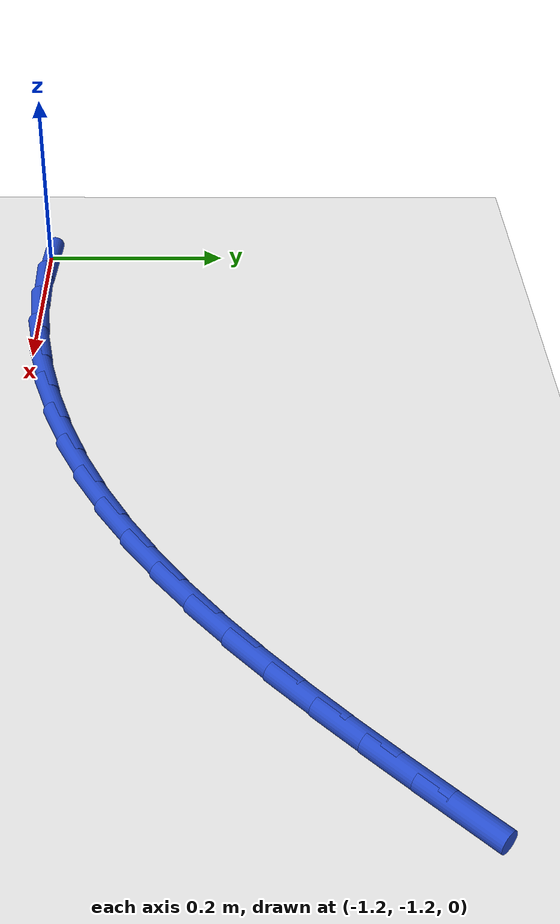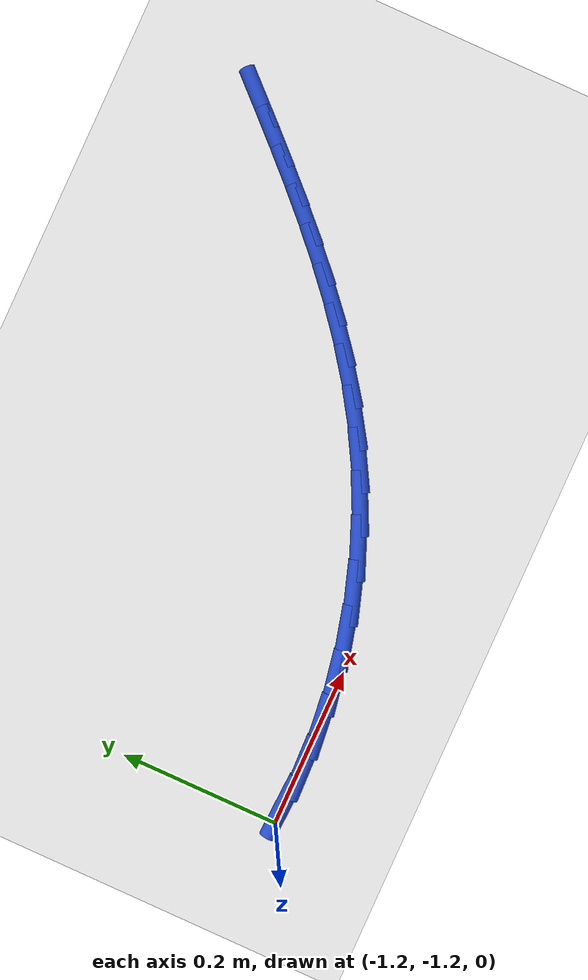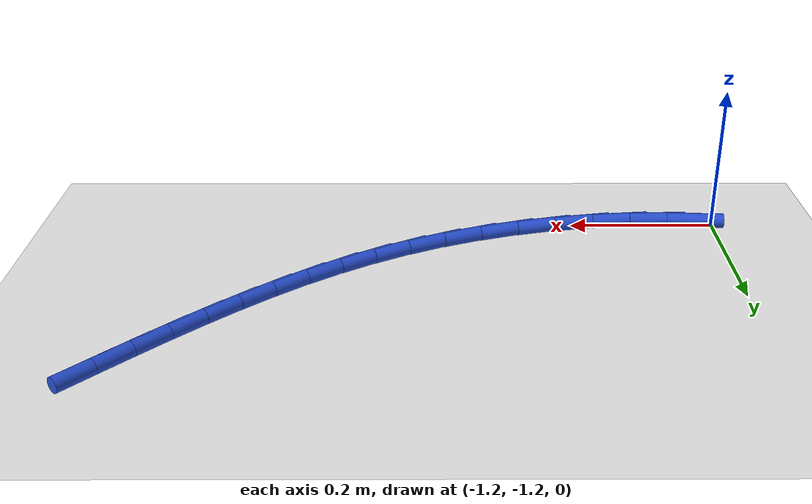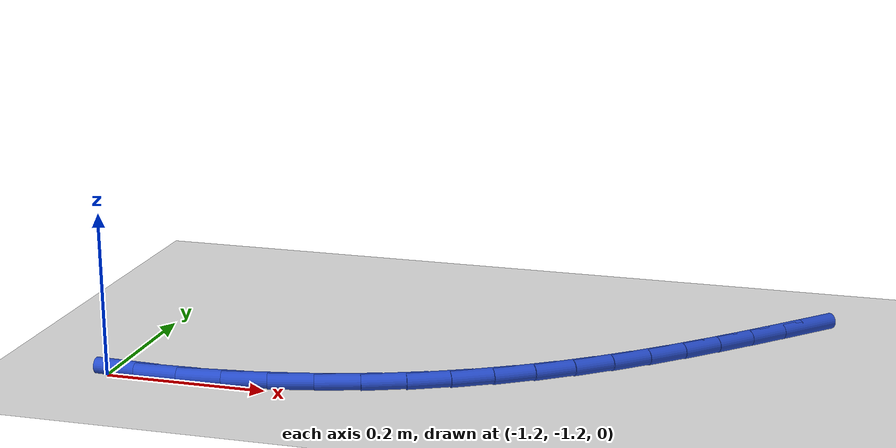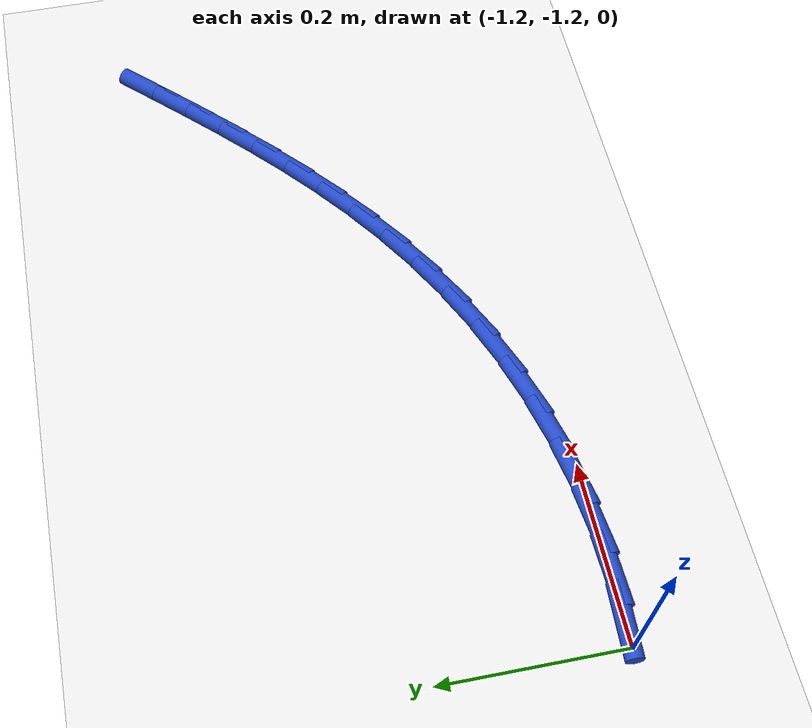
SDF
<sdf version="1.6">
 <world name="default">
  <model name="ground_plane">
   <static>1</static>
   <link name="link">
    <collision name="collision">
     <geometry><plane><normal>0 0 1</normal><size>100 100</size></plane></geometry>
     <surface><friction><ode><mu>100</mu><mu2>50</mu2></ode></friction></surface>
    </collision>
    <visual name="visual">
     <cast_shadows>0</cast_shadows>
     <geometry><plane><normal>0 0 1</normal><size>100 100</size></plane></geometry>
     <material>
      <script><uri>file://media/materials/scripts/gazebo.material</uri><name>Gazebo/WhiteGlow</name></script>
     </material>
    </visual>
   </link>
  </model>
  <model name="line">
   <link name="link_104">
    <pose>-1.1750400332294564 -1.1976938174834957 0.01 0 1.57 -0.05177354685977897</pose>
    <collision name="collision">
     <geometry><cylinder><radius>0.01</radius><length>0.08</length></cylinder></geometry>
    </collision>
    <visual name="visual">
     <material>
      <script><name>Gazebo/Blue</name><uri>file://media/materials/scripts/gazebo.material</uri></script>
     </material>
     <geometry><cylinder><radius>0.01</radius><length>0.08</length></cylinder></geometry>
    </visual>
   </link>
   <link name="link_105">
    <pose>-1.122023170419691 -1.2004411436894153 0.01 0 1.57 0.032870290658362264</pose>
    <collision name="collision">
     <geometry><cylinder><radius>0.01</radius><length>0.08</length></cylinder></geometry>
    </collision>
    <visual name="visual">
     <material>
      <script><name>Gazebo/Blue</name><uri>file://media/materials/scripts/gazebo.material</uri></script>
     </material>
     <geometry><cylinder><radius>0.01</radius><length>0.08</length></cylinder></geometry>
    </visual>
   </link>
   <link name="link_106">
    <pose>-1.0680315605111341 -1.1986657843333197 0.01 0 1.57 0.10997685974123388</pose>
    <collision name="collision">
     <geometry><cylinder><radius>0.01</radius><length>0.08</length></cylinder></geometry>
    </collision>
    <visual name="visual">
     <material>
      <script><name>Gazebo/Blue</name><uri>file://media/materials/scripts/gazebo.material</uri></script>
     </material>
     <geometry><cylinder><radius>0.01</radius><length>0.08</length></cylinder></geometry>
    </visual>
   </link>
   <link name="link_107">
    <pose>-1.0137138181843144 -1.192667888748304 0.01 0 1.57 0.18169873803306566</pose>
    <collision name="collision">
     <geometry><cylinder><radius>0.01</radius><length>0.08</length></cylinder></geometry>
    </collision>
    <visual name="visual">
     <material>
      <script><name>Gazebo/Blue</name><uri>file://media/materials/scripts/gazebo.material</uri></script>
     </material>
     <geometry><cylinder><radius>0.01</radius><length>0.08</length></cylinder></geometry>
    </visual>
   </link>
   <link name="link_108">
    <pose>-0.9597185581197619 -1.1827476062674644 0.01 0 1.57 0.2500571572028548</pose>
    <collision name="collision">
     <geometry><cylinder><radius>0.01</radius><length>0.08</length></cylinder></geometry>
    </collision>
    <visual name="visual">
     <material>
      <script><name>Gazebo/Blue</name><uri>file://media/materials/scripts/gazebo.material</uri></script>
     </material>
     <geometry><cylinder><radius>0.01</radius><length>0.08</length></cylinder></geometry>
    </visual>
   </link>
   <link name="link_109">
    <pose>-0.9066943949980057 -1.1692050862238972 0.01 0 1.57 0.3170122432834845</pose>
    <collision name="collision">
     <geometry><cylinder><radius>0.01</radius><length>0.08</length></cylinder></geometry>
    </collision>
    <visual name="visual">
     <material>
      <script><name>Gazebo/Blue</name><uri>file://media/materials/scripts/gazebo.material</uri></script>
     </material>
     <geometry><cylinder><radius>0.01</radius><length>0.08</length></cylinder></geometry>
    </visual>
   </link>
   <link name="link_110">
    <pose>-0.8552899434995771 -1.152340477950698 0.01 0 1.57 0.38453600800001075</pose>
    <collision name="collision">
     <geometry><cylinder><radius>0.01</radius><length>0.08</length></cylinder></geometry>
    </collision>
    <visual name="visual">
     <material>
      <script><name>Gazebo/Blue</name><uri>file://media/materials/scripts/gazebo.material</uri></script>
     </material>
     <geometry><cylinder><radius>0.01</radius><length>0.08</length></cylinder></geometry>
    </visual>
   </link>
   <link name="link_111">
    <pose>-0.8061478771848172 -1.1324535710333958 0.01 0 1.57 0.4522810683135628</pose>
    <collision name="collision">
     <geometry><cylinder><radius>0.01</radius><length>0.08</length></cylinder></geometry>
    </collision>
    <visual name="visual">
     <material>
      <script><name>Gazebo/Blue</name><uri>file://media/materials/scripts/gazebo.material</uri></script>
     </material>
     <geometry><cylinder><radius>0.01</radius><length>0.08</length></cylinder></geometry>
    </visual>
   </link>
   <link name="link_112">
    <pose>-0.7595718979559357 -1.1098236295967543 0.01 0 1.57 0.5166767208879514</pose>
    <collision name="collision">
     <geometry><cylinder><radius>0.01</radius><length>0.08</length></cylinder></geometry>
    </collision>
    <visual name="visual">
     <material>
      <script><name>Gazebo/Blue</name><uri>file://media/materials/scripts/gazebo.material</uri></script>
     </material>
     <geometry><cylinder><radius>0.01</radius><length>0.08</length></cylinder></geometry>
    </visual>
   </link>
   <link name="link_113">
    <pose>-0.7153501220354614 -1.0846986979470472 0.01 0 1.57 0.5762876493993108</pose>
    <collision name="collision">
     <geometry><cylinder><radius>0.01</radius><length>0.08</length></cylinder></geometry>
    </collision>
    <visual name="visual">
     <material>
      <script><name>Gazebo/Blue</name><uri>file://media/materials/scripts/gazebo.material</uri></script>
     </material>
     <geometry><cylinder><radius>0.01</radius><length>0.08</length></cylinder></geometry>
    </visual>
   </link>
   <link name="link_114">
    <pose>-0.6732274424371826 -1.0573242031325762 0.01 0 1.57 0.6301757657578567</pose>
    <collision name="collision">
     <geometry><cylinder><radius>0.01</radius><length>0.08</length></cylinder></geometry>
    </collision>
    <visual name="visual">
     <material>
      <script><name>Gazebo/Blue</name><uri>file://media/materials/scripts/gazebo.material</uri></script>
     </material>
     <geometry><cylinder><radius>0.01</radius><length>0.08</length></cylinder></geometry>
    </visual>
   </link>
   <link name="link_115">
    <pose>-0.6329487521748858 -1.027945572201642 0.01 0 1.57 0.6776575157561566</pose>
    <collision name="collision">
     <geometry><cylinder><radius>0.01</radius><length>0.08</length></cylinder></geometry>
    </collision>
    <visual name="visual">
     <material>
      <script><name>Gazebo/Blue</name><uri>file://media/materials/scripts/gazebo.material</uri></script>
     </material>
     <geometry><cylinder><radius>0.01</radius><length>0.08</length></cylinder></geometry>
    </visual>
   </link>
   <link name="link_116">
    <pose>-0.5942589442623579 -0.9968082322025453 0.01 0 1.57 0.7182853461541979</pose>
    <collision name="collision">
     <geometry><cylinder><radius>0.01</radius><length>0.08</length></cylinder></geometry>
    </collision>
    <visual name="visual">
     <material>
      <script><name>Gazebo/Blue</name><uri>file://media/materials/scripts/gazebo.material</uri></script>
     </material>
     <geometry><cylinder><radius>0.01</radius><length>0.08</length></cylinder></geometry>
    </visual>
   </link>
   <link name="link_117">
    <pose>-0.5569029117133856 -0.9641576101835864 0.01 0 1.57 0.7518064318114235</pose>
    <collision name="collision">
     <geometry><cylinder><radius>0.01</radius><length>0.08</length></cylinder></geometry>
    </collision>
    <visual name="visual">
     <material>
      <script><name>Gazebo/Blue</name><uri>file://media/materials/scripts/gazebo.material</uri></script>
     </material>
     <geometry><cylinder><radius>0.01</radius><length>0.08</length></cylinder></geometry>
    </visual>
   </link>
   <link name="link_118">
    <pose>-0.5206255475417568 -0.9302391331930672 0.01 0 1.57 0.7781122635354829</pose>
    <collision name="collision">
     <geometry><cylinder><radius>0.01</radius><length>0.08</length></cylinder></geometry>
    </collision>
    <visual name="visual">
     <material>
      <script><name>Gazebo/Blue</name><uri>file://media/materials/scripts/gazebo.material</uri></script>
     </material>
     <geometry><cylinder><radius>0.01</radius><length>0.08</length></cylinder></geometry>
    </visual>
   </link>
   <link name="link_119">
    <pose>-0.4851717447612581 -0.8952982282792877 0.01 0 1.57 0.7971896712604652</pose>
    <collision name="collision">
     <geometry><cylinder><radius>0.01</radius><length>0.08</length></cylinder></geometry>
    </collision>
    <visual name="visual">
     <material>
      <script><name>Gazebo/Blue</name><uri>file://media/materials/scripts/gazebo.material</uri></script>
     </material>
     <geometry><cylinder><radius>0.01</radius><length>0.08</length></cylinder></geometry>
    </visual>
   </link>
   <link name="link_120">
    <pose>-0.45028639638567636 -0.8595803224905493 0.01 0 1.57 0.809079750491392</pose>
    <collision name="collision">
     <geometry><cylinder><radius>0.01</radius><length>0.08</length></cylinder></geometry>
    </collision>
    <visual name="visual">
     <material>
      <script><name>Gazebo/Blue</name><uri>file://media/materials/scripts/gazebo.material</uri></script>
     </material>
     <geometry><cylinder><radius>0.01</radius><length>0.08</length></cylinder></geometry>
    </visual>
   </link>
   <link name="link_121">
    <pose>-0.41571439542879857 -0.823330842875152 0.01 0 1.57 0.8138476750011707</pose>
    <collision name="collision">
     <geometry><cylinder><radius>0.01</radius><length>0.08</length></cylinder></geometry>
    </collision>
    <visual name="visual">
     <material>
      <script><name>Gazebo/Blue</name><uri>file://media/materials/scripts/gazebo.material</uri></script>
     </material>
     <geometry><cylinder><radius>0.01</radius><length>0.08</length></cylinder></geometry>
    </visual>
   </link>
  </model>
 </world>
</sdf>
